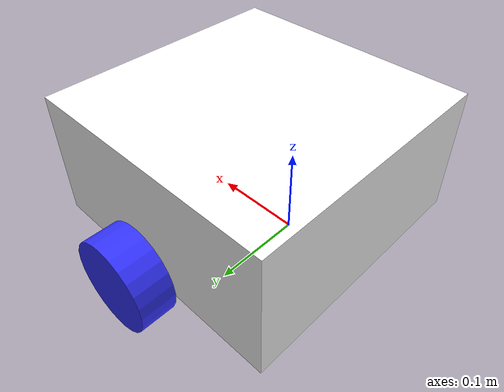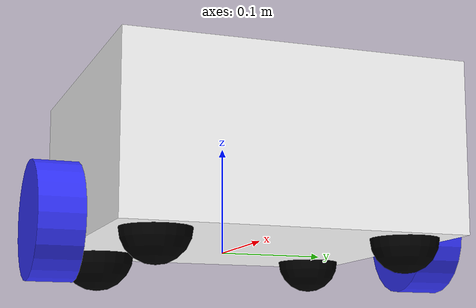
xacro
<?xml version="1.0"?>
<robot xmlns:xacro="http://www.ros.org/wiki/xacro">

<xacro:include filename="inertial_macros.xacro" />

<material name="white">
    <color rgba="1 1 1 1"/>
</material>

<material name="orange">
    <color rgba="1 0.3 0.1 1"/>
</material>

<material name="blue">
    <color rgba="0.2 0.2 1 1"/>
</material>

<material name="black">
    <color rgba="0 0 0 1"/>
</material>

<!--base link-->

<link name="base_link">
</link>

<!-- BASE_FOOTPRINT LINK -->

    <joint name="base_footprint_joint" type="fixed">
        <parent link="base_link"/>
        <child link="base_footprint"/>
        <origin xyz="0 0 0" rpy="0 0 0"/>
    </joint>

    <link name="base_footprint">
    </link>

<!--chasis link-->

<joint name="chassis_joint" type="fixed">
    <parent link="base_link"/>
    <child link="chassis"/>
    <origin xyz="-0.1 0 0"/>
</joint>

<link name="chassis">
    <visual>
        <origin xyz="0.15 0 0.075" rpy="0 0 0"/>  //shift origin half length forward and half height to allign in between two wheels
        <geometry>
            <box size="0.3 0.3 0.15"/>
        </geometry>
        <material name="white"/>
    </visual>
        <collision>
        <origin xyz="0.15 0 0.075" rpy="0 0 0"/>
        <geometry>
            <box size="0.3 0.3 0.15"/>
        </geometry>
    </collision>
        <xacro:inertial_box mass="0.5" x="0.3" y="0.3" z="0.15">
        <origin xyz="0.15 0 0.075" rpy="0 0 0"/>
    </xacro:inertial_box>
</link>

<gazebo reference="chassis">
    <material>Gazebo/White</material>
</gazebo>

<!--left wheel link-->

<joint name="left_wheel_joint" type="continuous">
    <parent link="base_link"/>
    <child link="left_wheel"/>
    <origin xyz="0.06 0.175 0.015" rpy="-${pi/2} 0 0"/>     //-pi/2 =yaw, roll and pitch=0
    <axis xyz="0 0 1"/>                              //move forward
</joint>

<link name="left_wheel">
    <visual>
        <geometry>
            <cylinder length="0.04" radius="0.052" />
        </geometry>
        <material name="blue"/>
    </visual>
        <collision>
        <geometry>
            <cylinder length="0.04" radius="0.052" />
        </geometry>
        <material name="blue"/>
    </collision>
        <xacro:inertial_cylinder mass="0.1" length="0.05" radius="0.052">
        <origin xyz="0 0 0" rpy="0 0 0"/>
    </xacro:inertial_cylinder>
</link>

<gazebo reference="left_wheel">
    <material>Gazebo/Blue</material>
</gazebo>

<!--right wheel link-->

<joint name="right_wheel_joint" type="continuous">
    <parent link="base_link"/>
    <child link="right_wheel"/>
    <origin xyz="0.06 -0.175 0.015" rpy="${pi/2} 0 0"/>
    <axis xyz="0 0 -1"/>
</joint>

<link name="right_wheel">
    <visual>
        <geometry>
            <cylinder length="0.04" radius="0.052" />
        </geometry>
        <material name="blue"/>
    </visual>
        <collision>
        <geometry>
            <cylinder length="0.04" radius="0.052" />
        </geometry>
        <material name="blue"/>
    </collision>
        <xacro:inertial_cylinder mass="0.1" length="0.05" radius="0.052">
        <origin xyz="0 0 0" rpy="0 0 0"/>
    </xacro:inertial_cylinder>
</link>

<gazebo reference="right_wheel">
    <material>Gazebo/Blue</material>
</gazebo>

<!--caster wheel1 link-->

<joint name="caster_wheel1_joint" type="fixed">
    <parent link="chassis"/>
    <child link="caster_wheel1"/>
    <origin xyz="0.26 -0.11 0" rpy="0 0 0"/>
</joint>

<link name="caster_wheel1">
    <visual>
        <geometry>
            <sphere radius="0.03" />
        </geometry>
        <material name="black"/>
    </visual>
        <collision>
        <geometry>
            <sphere radius="0.03" />
        </geometry>
        <material name="black"/>
    </collision>
        <xacro:inertial_sphere mass="0.1" radius="0.03">
        <origin xyz="0 0 0" rpy="0 0 0"/>
    </xacro:inertial_sphere>
</link>

<gazebo reference="caster_wheel1">
    <material>Gazebo/Black</material>
    <mu1 value="0.001"/>
    <mu2 value="0.001"/>
</gazebo>

<!--caster wheel2 link-->

<joint name="caster_wheel2_joint" type="fixed">
    <parent link="chassis"/>
    <child link="caster_wheel2"/>
    <origin xyz="0.26 0.11 0" rpy="0 0 0"/>
</joint>

<link name="caster_wheel2">
    <visual>
        <geometry>
            <sphere radius="0.03" />
        </geometry>
        <material name="black"/>
    </visual>
        <collision>
        <geometry>
            <sphere radius="0.03" />
        </geometry>
        <material name="black"/>
    </collision>
        <xacro:inertial_sphere mass="0.1" radius="0.03">
        <origin xyz="0 0 0" rpy="0 0 0"/>
    </xacro:inertial_sphere>
</link>

<gazebo reference="caster_wheel2">
    <material>Gazebo/Black</material>
        <mu1 value="0.001"/>
    <mu2 value="0.001"/>
</gazebo>

<!--caster wheel3 link-->

<joint name="caster_wheel3_joint" type="fixed">
    <parent link="chassis"/>
    <child link="caster_wheel3"/>
    <origin xyz="0.05 0.11 0" rpy="0 0 0"/>
</joint>

<link name="caster_wheel3">
    <visual>
        <geometry>
            <sphere radius="0.03" />
        </geometry>
        <material name="black"/>
    </visual>
        <collision>
        <geometry>
            <sphere radius="0.03" />
        </geometry>
        <material name="black"/>
    </collision>
        <xacro:inertial_sphere mass="0.1" radius="0.03">
        <origin xyz="0 0 0" rpy="0 0 0"/>
    </xacro:inertial_sphere>
</link>

<gazebo reference="caster_wheel3">
    <material>Gazebo/Black</material>
        <mu1 value="0.001"/>
    <mu2 value="0.001"/>
</gazebo>

<!--caster wheel4 link-->

<joint name="caster_wheel4_joint" type="fixed">
    <parent link="chassis"/>
    <child link="caster_wheel4"/>
    <origin xyz="0.05 -0.11 0" rpy="0 0 0"/>
</joint>

<link name="caster_wheel4">
    <visual>
        <geometry>
            <sphere radius="0.035" />
        </geometry>
        <material name="black"/>
    </visual>
        <collision>
        <geometry>
            <sphere radius="0.035" />
        </geometry>
        <material name="black"/>
    </collision>
        <xacro:inertial_sphere mass="0.1" radius="0.035">
        <origin xyz="0 0 0" rpy="0 0 0"/>
    </xacro:inertial_sphere>
</link>

<gazebo reference="caster_wheel4">
    <material>Gazebo/Black</material>
        <mu1 value="0.001"/>
    <mu2 value="0.001"/>
</gazebo>

</robot>
